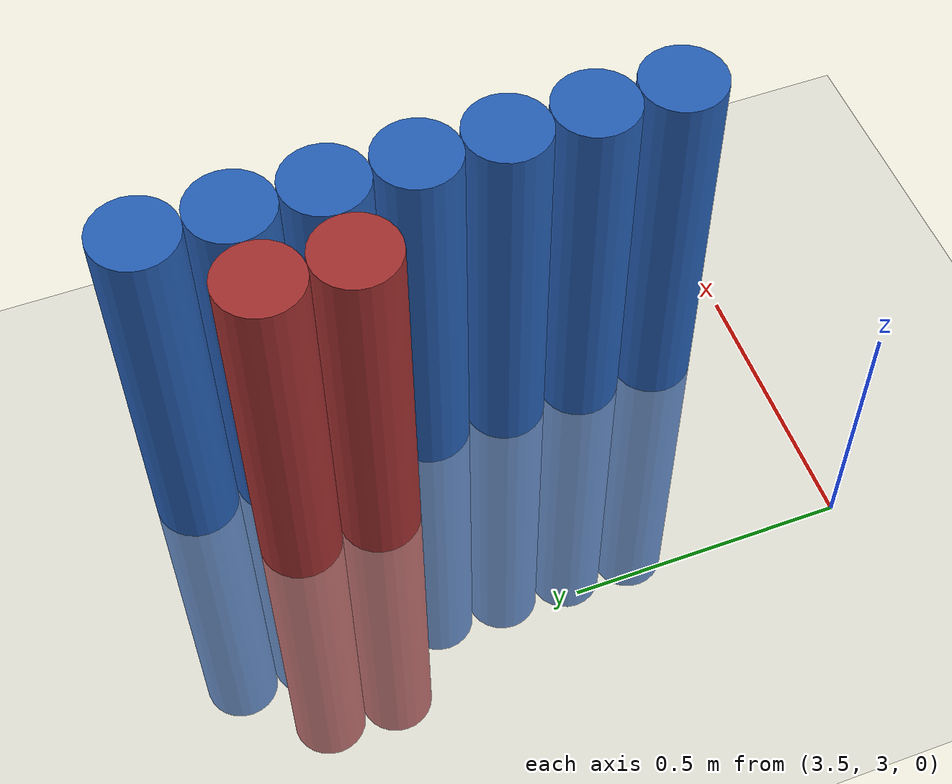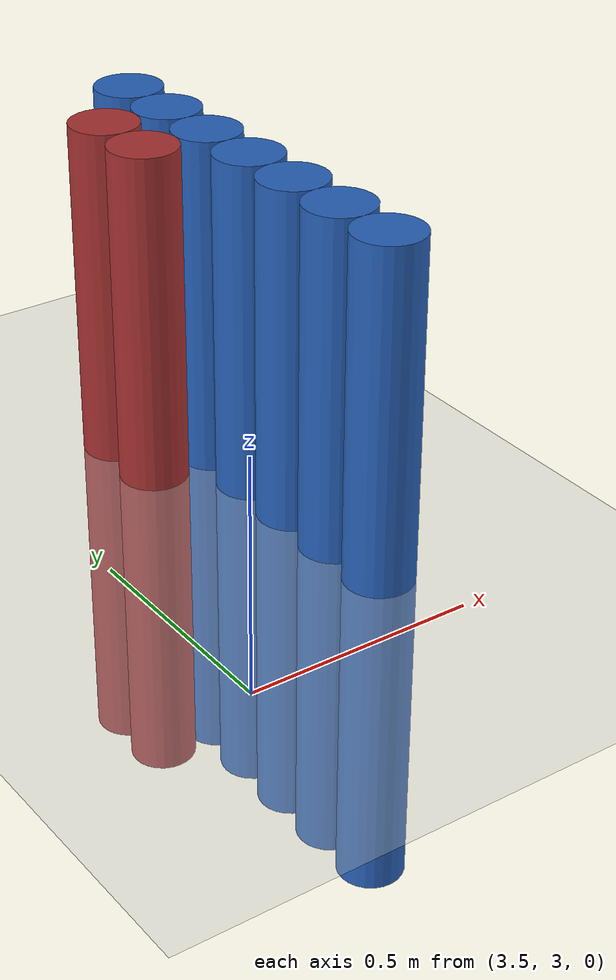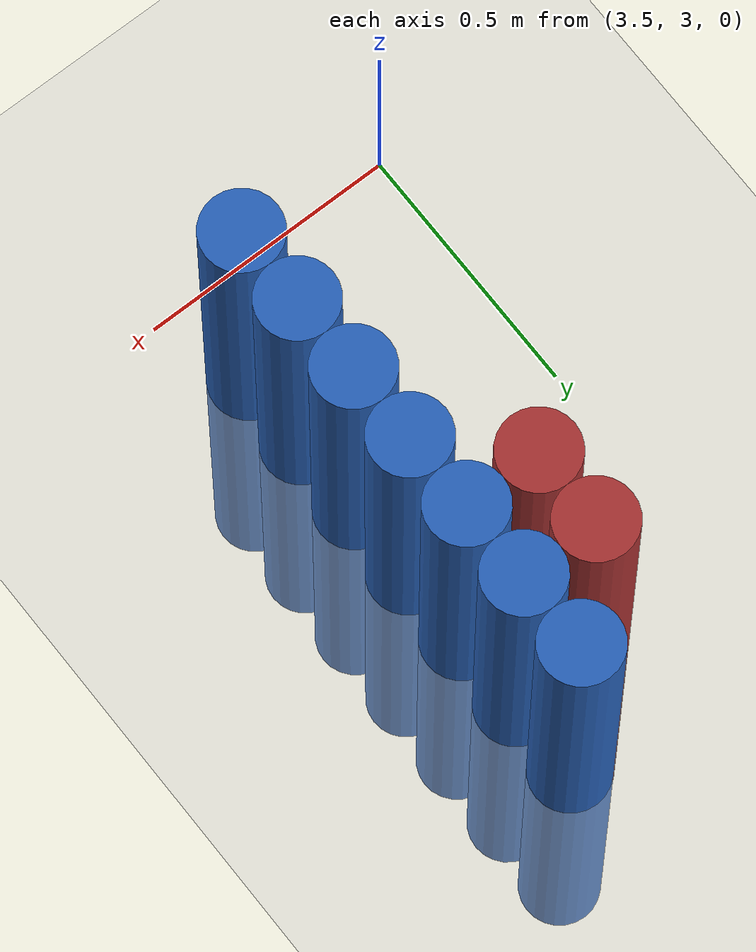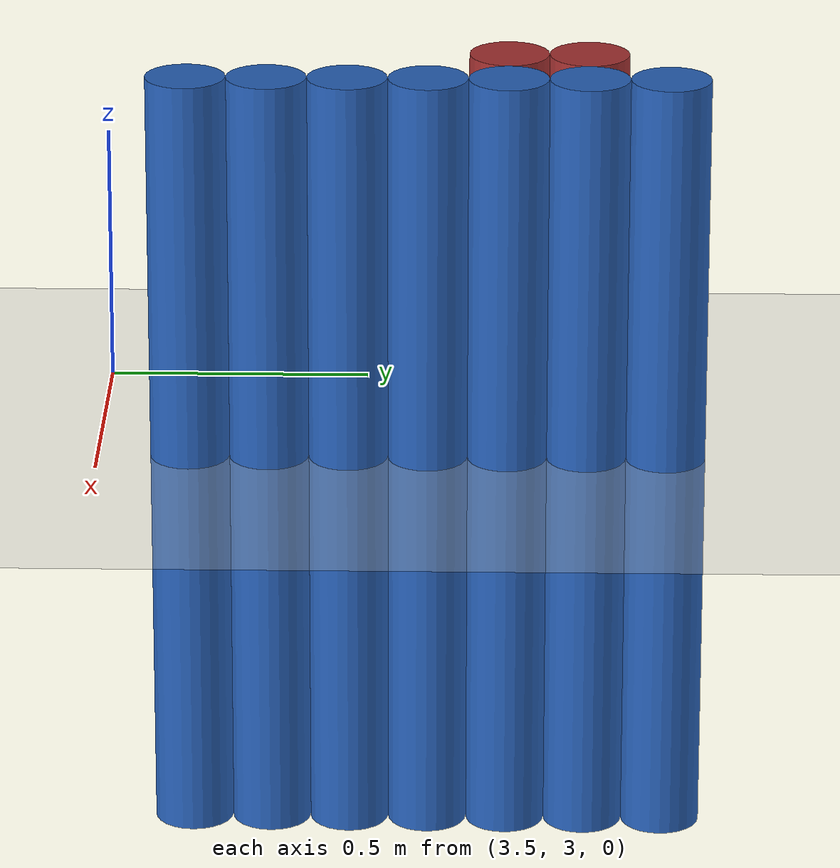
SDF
<sdf version="1.6">
 <world name="default">
  <model name="ground_plane">
   <static>1</static>
   <link name="link">
    <collision name="collision">
     <geometry><plane><normal>0 0 1</normal><size>100 100</size></plane></geometry>
     <surface><friction><ode><mu>100</mu><mu2>50</mu2></ode></friction></surface>
    </collision>
    <visual name="visual">
     <cast_shadows>0</cast_shadows>
     <geometry><plane><normal>0 0 1</normal><size>100 100</size></plane></geometry>
     <material>
      <script><uri>file://media/materials/scripts/gazebo.material</uri><name>Gazebo/Grey</name></script>
     </material>
    </visual>
   </link>
  </model>
  <model name="unit_cylinder_158">
   <static>1</static>
   <pose>3.925000 3.325000 0.000000 0.000000 0.000000 0.000000</pose>
   <link name="link">
    <inertial>
     <mass>1</mass>
     <inertia><ixx>0.145833</ixx><ixy>0</ixy><ixz>0</ixz><iyy>0.145833</iyy><iyz>0</iyz><izz>0.125</izz></inertia>
    </inertial>
    <collision name="collision">
     <geometry><cylinder><radius>0.075000</radius><length>1.5</length></cylinder></geometry>
    </collision>
    <visual name="visual">
     <geometry><cylinder><radius>0.075000</radius><length>1.5</length></cylinder></geometry>
     <material>
      <ambient>0.152000 0.379000 0.720000 1</ambient>
      <diffuse>0.152000 0.379000 0.720000 1</diffuse>
     </material>
     <material>
      <script><name>Gazebo/Grey</name><uri>file://media/materials/scripts/gazebo.material</uri></script>
     </material>
    </visual>
   </link>
  </model>
  <model name="unit_cylinder_160">
   <static>1</static>
   <pose>3.925000 3.475000 0.000000 0.000000 0.000000 0.000000</pose>
   <link name="link">
    <inertial>
     <mass>1</mass>
     <inertia><ixx>0.145833</ixx><ixy>0</ixy><ixz>0</ixz><iyy>0.145833</iyy><iyz>0</iyz><izz>0.125</izz></inertia>
    </inertial>
    <collision name="collision">
     <geometry><cylinder><radius>0.075000</radius><length>1.5</length></cylinder></geometry>
    </collision>
    <visual name="visual">
     <geometry><cylinder><radius>0.075000</radius><length>1.5</length></cylinder></geometry>
     <material>
      <ambient>0.152000 0.379000 0.720000 1</ambient>
      <diffuse>0.152000 0.379000 0.720000 1</diffuse>
     </material>
     <material>
      <script><name>Gazebo/Grey</name><uri>file://media/materials/scripts/gazebo.material</uri></script>
     </material>
    </visual>
   </link>
  </model>
  <model name="unit_cylinder_162">
   <static>1</static>
   <pose>3.925000 3.625000 0.000000 0.000000 0.000000 0.000000</pose>
   <link name="link">
    <inertial>
     <mass>1</mass>
     <inertia><ixx>0.145833</ixx><ixy>0</ixy><ixz>0</ixz><iyy>0.145833</iyy><iyz>0</iyz><izz>0.125</izz></inertia>
    </inertial>
    <collision name="collision">
     <geometry><cylinder><radius>0.075000</radius><length>1.5</length></cylinder></geometry>
    </collision>
    <visual name="visual">
     <geometry><cylinder><radius>0.075000</radius><length>1.5</length></cylinder></geometry>
     <material>
      <ambient>0.152000 0.379000 0.720000 1</ambient>
      <diffuse>0.152000 0.379000 0.720000 1</diffuse>
     </material>
     <material>
      <script><name>Gazebo/Grey</name><uri>file://media/materials/scripts/gazebo.material</uri></script>
     </material>
    </visual>
   </link>
  </model>
  <model name="unit_cylinder_164">
   <static>1</static>
   <pose>3.925000 3.775000 0.000000 0.000000 0.000000 0.000000</pose>
   <link name="link">
    <inertial>
     <mass>1</mass>
     <inertia><ixx>0.145833</ixx><ixy>0</ixy><ixz>0</ixz><iyy>0.145833</iyy><iyz>0</iyz><izz>0.125</izz></inertia>
    </inertial>
    <collision name="collision">
     <geometry><cylinder><radius>0.075000</radius><length>1.5</length></cylinder></geometry>
    </collision>
    <visual name="visual">
     <geometry><cylinder><radius>0.075000</radius><length>1.5</length></cylinder></geometry>
     <material>
      <ambient>0.152000 0.379000 0.720000 1</ambient>
      <diffuse>0.152000 0.379000 0.720000 1</diffuse>
     </material>
     <material>
      <script><name>Gazebo/Grey</name><uri>file://media/materials/scripts/gazebo.material</uri></script>
     </material>
    </visual>
   </link>
  </model>
  <model name="unit_cylinder_166">
   <static>1</static>
   <pose>3.925000 3.925000 0.000000 0.000000 0.000000 0.000000</pose>
   <link name="link">
    <inertial>
     <mass>1</mass>
     <inertia><ixx>0.145833</ixx><ixy>0</ixy><ixz>0</ixz><iyy>0.145833</iyy><iyz>0</iyz><izz>0.125</izz></inertia>
    </inertial>
    <collision name="collision">
     <geometry><cylinder><radius>0.075000</radius><length>1.5</length></cylinder></geometry>
    </collision>
    <visual name="visual">
     <geometry><cylinder><radius>0.075000</radius><length>1.5</length></cylinder></geometry>
     <material>
      <ambient>0.152000 0.379000 0.720000 1</ambient>
      <diffuse>0.152000 0.379000 0.720000 1</diffuse>
     </material>
     <material>
      <script><name>Gazebo/Grey</name><uri>file://media/materials/scripts/gazebo.material</uri></script>
     </material>
    </visual>
   </link>
  </model>
  <model name="unit_cylinder_168">
   <static>1</static>
   <pose>3.925000 4.075000 0.000000 0.000000 0.000000 0.000000</pose>
   <link name="link">
    <inertial>
     <mass>1</mass>
     <inertia><ixx>0.145833</ixx><ixy>0</ixy><ixz>0</ixz><iyy>0.145833</iyy><iyz>0</iyz><izz>0.125</izz></inertia>
    </inertial>
    <collision name="collision">
     <geometry><cylinder><radius>0.075000</radius><length>1.5</length></cylinder></geometry>
    </collision>
    <visual name="visual">
     <geometry><cylinder><radius>0.075000</radius><length>1.5</length></cylinder></geometry>
     <material>
      <ambient>0.152000 0.379000 0.720000 1</ambient>
      <diffuse>0.152000 0.379000 0.720000 1</diffuse>
     </material>
     <material>
      <script><name>Gazebo/Grey</name><uri>file://media/materials/scripts/gazebo.material</uri></script>
     </material>
    </visual>
   </link>
  </model>
  <model name="unit_cylinder_432">
   <static>1</static>
   <pose>3.775000 3.775000 0.000000 0.000000 0.000000 0.000000</pose>
   <link name="link">
    <inertial>
     <mass>1</mass>
     <inertia><ixx>0.145833</ixx><ixy>0</ixy><ixz>0</ixz><iyy>0.145833</iyy><iyz>0</iyz><izz>0.125</izz></inertia>
    </inertial>
    <collision name="collision">
     <geometry><cylinder><radius>0.075000</radius><length>1.5</length></cylinder></geometry>
    </collision>
    <visual name="visual">
     <geometry><cylinder><radius>0.075000</radius><length>1.5</length></cylinder></geometry>
     <material>
      <ambient>0.648000 0.192000 0.192000 1</ambient>
      <diffuse>0.648000 0.192000 0.192000 1</diffuse>
     </material>
     <material>
      <script><name>Gazebo/Grey</name><uri>file://media/materials/scripts/gazebo.material</uri></script>
     </material>
    </visual>
   </link>
  </model>
  <model name="unit_cylinder_433">
   <static>1</static>
   <pose>3.775000 3.925000 0.000000 0.000000 0.000000 0.000000</pose>
   <link name="link">
    <inertial>
     <mass>1</mass>
     <inertia><ixx>0.145833</ixx><ixy>0</ixy><ixz>0</ixz><iyy>0.145833</iyy><iyz>0</iyz><izz>0.125</izz></inertia>
    </inertial>
    <collision name="collision">
     <geometry><cylinder><radius>0.075000</radius><length>1.5</length></cylinder></geometry>
    </collision>
    <visual name="visual">
     <geometry><cylinder><radius>0.075000</radius><length>1.5</length></cylinder></geometry>
     <material>
      <ambient>0.648000 0.192000 0.192000 1</ambient>
      <diffuse>0.648000 0.192000 0.192000 1</diffuse>
     </material>
     <material>
      <script><name>Gazebo/Grey</name><uri>file://media/materials/scripts/gazebo.material</uri></script>
     </material>
    </visual>
   </link>
  </model>
  <model name="unit_cylinder_474">
   <static>1</static>
   <pose>3.925000 3.175000 0.000000 0.000000 0.000000 0.000000</pose>
   <link name="link">
    <inertial>
     <mass>1</mass>
     <inertia><ixx>0.145833</ixx><ixy>0</ixy><ixz>0</ixz><iyy>0.145833</iyy><iyz>0</iyz><izz>0.125</izz></inertia>
    </inertial>
    <collision name="collision">
     <geometry><cylinder><radius>0.075000</radius><length>1.5</length></cylinder></geometry>
    </collision>
    <visual name="visual">
     <geometry><cylinder><radius>0.075000</radius><length>1.5</length></cylinder></geometry>
     <material>
      <ambient>0.152000 0.379000 0.720000 1</ambient>
      <diffuse>0.152000 0.379000 0.720000 1</diffuse>
     </material>
     <material>
      <script><name>Gazebo/Grey</name><uri>file://media/materials/scripts/gazebo.material</uri></script>
     </material>
    </visual>
   </link>
  </model>
  <model name="unit_cylinder_475">
   <static>1</static>
   <pose>3.925000 3.325000 0.000000 0.000000 0.000000 0.000000</pose>
   <link name="link">
    <inertial>
     <mass>1</mass>
     <inertia><ixx>0.145833</ixx><ixy>0</ixy><ixz>0</ixz><iyy>0.145833</iyy><iyz>0</iyz><izz>0.125</izz></inertia>
    </inertial>
    <collision name="collision">
     <geometry><cylinder><radius>0.075000</radius><length>1.5</length></cylinder></geometry>
    </collision>
    <visual name="visual">
     <geometry><cylinder><radius>0.075000</radius><length>1.5</length></cylinder></geometry>
     <material>
      <ambient>0.152000 0.379000 0.720000 1</ambient>
      <diffuse>0.152000 0.379000 0.720000 1</diffuse>
     </material>
     <material>
      <script><name>Gazebo/Grey</name><uri>file://media/materials/scripts/gazebo.material</uri></script>
     </material>
    </visual>
   </link>
  </model>
  <model name="unit_cylinder_476">
   <static>1</static>
   <pose>3.925000 3.475000 0.000000 0.000000 0.000000 0.000000</pose>
   <link name="link">
    <inertial>
     <mass>1</mass>
     <inertia><ixx>0.145833</ixx><ixy>0</ixy><ixz>0</ixz><iyy>0.145833</iyy><iyz>0</iyz><izz>0.125</izz></inertia>
    </inertial>
    <collision name="collision">
     <geometry><cylinder><radius>0.075000</radius><length>1.5</length></cylinder></geometry>
    </collision>
    <visual name="visual">
     <geometry><cylinder><radius>0.075000</radius><length>1.5</length></cylinder></geometry>
     <material>
      <ambient>0.152000 0.379000 0.720000 1</ambient>
      <diffuse>0.152000 0.379000 0.720000 1</diffuse>
     </material>
     <material>
      <script><name>Gazebo/Grey</name><uri>file://media/materials/scripts/gazebo.material</uri></script>
     </material>
    </visual>
   </link>
  </model>
  <model name="unit_cylinder_477">
   <static>1</static>
   <pose>3.925000 3.625000 0.000000 0.000000 0.000000 0.000000</pose>
   <link name="link">
    <inertial>
     <mass>1</mass>
     <inertia><ixx>0.145833</ixx><ixy>0</ixy><ixz>0</ixz><iyy>0.145833</iyy><iyz>0</iyz><izz>0.125</izz></inertia>
    </inertial>
    <collision name="collision">
     <geometry><cylinder><radius>0.075000</radius><length>1.5</length></cylinder></geometry>
    </collision>
    <visual name="visual">
     <geometry><cylinder><radius>0.075000</radius><length>1.5</length></cylinder></geometry>
     <material>
      <ambient>0.152000 0.379000 0.720000 1</ambient>
      <diffuse>0.152000 0.379000 0.720000 1</diffuse>
     </material>
     <material>
      <script><name>Gazebo/Grey</name><uri>file://media/materials/scripts/gazebo.material</uri></script>
     </material>
    </visual>
   </link>
  </model>
  <model name="unit_cylinder_478">
   <static>1</static>
   <pose>3.925000 3.775000 0.000000 0.000000 0.000000 0.000000</pose>
   <link name="link">
    <inertial>
     <mass>1</mass>
     <inertia><ixx>0.145833</ixx><ixy>0</ixy><ixz>0</ixz><iyy>0.145833</iyy><iyz>0</iyz><izz>0.125</izz></inertia>
    </inertial>
    <collision name="collision">
     <geometry><cylinder><radius>0.075000</radius><length>1.5</length></cylinder></geometry>
    </collision>
    <visual name="visual">
     <geometry><cylinder><radius>0.075000</radius><length>1.5</length></cylinder></geometry>
     <material>
      <ambient>0.152000 0.379000 0.720000 1</ambient>
      <diffuse>0.152000 0.379000 0.720000 1</diffuse>
     </material>
     <material>
      <script><name>Gazebo/Grey</name><uri>file://media/materials/scripts/gazebo.material</uri></script>
     </material>
    </visual>
   </link>
  </model>
  <model name="unit_cylinder_479">
   <static>1</static>
   <pose>3.925000 3.925000 0.000000 0.000000 0.000000 0.000000</pose>
   <link name="link">
    <inertial>
     <mass>1</mass>
     <inertia><ixx>0.145833</ixx><ixy>0</ixy><ixz>0</ixz><iyy>0.145833</iyy><iyz>0</iyz><izz>0.125</izz></inertia>
    </inertial>
    <collision name="collision">
     <geometry><cylinder><radius>0.075000</radius><length>1.5</length></cylinder></geometry>
    </collision>
    <visual name="visual">
     <geometry><cylinder><radius>0.075000</radius><length>1.5</length></cylinder></geometry>
     <material>
      <ambient>0.152000 0.379000 0.720000 1</ambient>
      <diffuse>0.152000 0.379000 0.720000 1</diffuse>
     </material>
     <material>
      <script><name>Gazebo/Grey</name><uri>file://media/materials/scripts/gazebo.material</uri></script>
     </material>
    </visual>
   </link>
  </model>
 </world>
</sdf>
